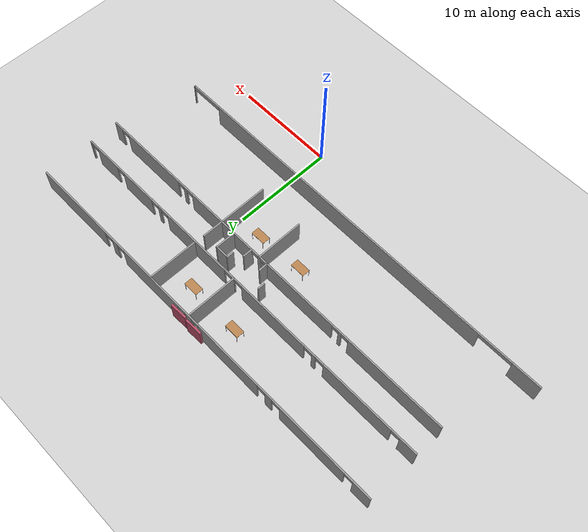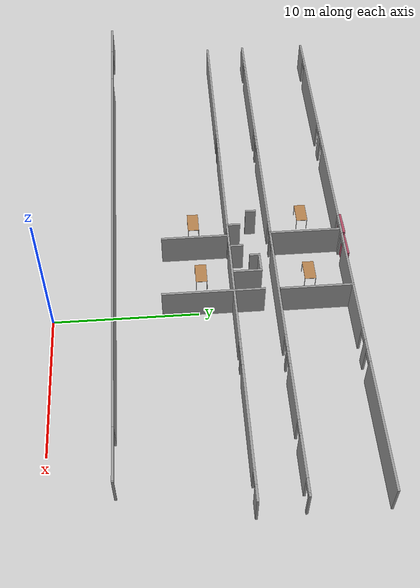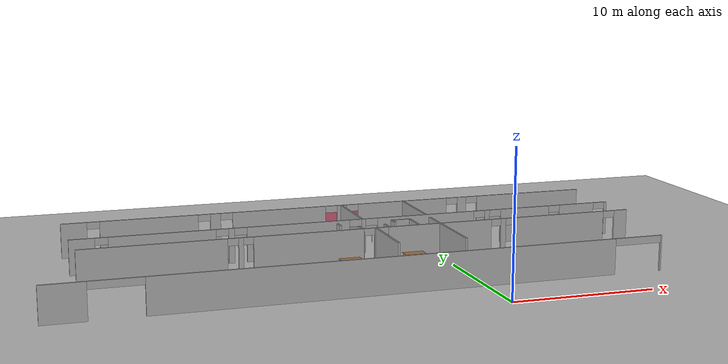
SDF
<sdf version="1.6">
 <world name="default">
  <model name="ground_plane">
   <static>1</static>
   <link name="link">
    <collision name="collision">
     <geometry><plane><normal>0 0 1</normal><size>100 100</size></plane></geometry>
     <surface><friction><ode><mu>100</mu><mu2>50</mu2></ode></friction></surface>
    </collision>
    <visual name="visual">
     <cast_shadows>0</cast_shadows>
     <geometry><plane><normal>0 0 1</normal><size>100 100</size></plane></geometry>
     <material>
      <script><uri>file://media/materials/scripts/gazebo.material</uri><name>Gazebo/Grey</name></script>
     </material>
    </visual>
   </link>
  </model>
  <model name="fin_se1f1.sdf">
   <pose>1.8125 -2.2901 0 0 -0 0</pose>
   <link name="Wall_1">
    <pose>-9.82457 6.52457 0 0 -0 0</pose>
    <visual name="Wall_1_Visual_0">
     <pose>-19.528 0 1.25 0 -0 0</pose>
     <geometry><box><size>2.94395 0.15 2.5</size></box></geometry>
     <material>
      <script><uri>file://media/materials/scripts/gazebo.material</uri><name>Gazebo/Grey</name></script>
      <ambient>1 1 1 1</ambient>
     </material>
     <meta><layer>0</layer></meta>
    </visual>
    <collision name="Wall_1_Collision_0">
     <geometry><box><size>2.94395 0.15 2.5</size></box></geometry>
     <pose>-19.528 0 1.25 0 -0 0</pose>
    </collision>
    <visual name="Wall_1_Visual_1">
     <pose>1.49202 0 1.25 0 -0 0</pose>
     <geometry><box><size>31.9924 0.15 2.5</size></box></geometry>
     <material>
      <script><uri>file://media/materials/scripts/gazebo.material</uri><name>Gazebo/Grey</name></script>
      <ambient>1 1 1 1</ambient>
     </material>
     <meta><layer>0</layer></meta>
    </visual>
    <collision name="Wall_1_Collision_1">
     <geometry><box><size>31.9924 0.15 2.5</size></box></geometry>
     <pose>1.49202 0 1.25 0 -0 0</pose>
    </collision>
    <visual name="Wall_1_Visual_2">
     <pose>20.9503 0 1.25 0 -0 0</pose>
     <geometry><box><size>0.099489 0.15 2.5</size></box></geometry>
     <material>
      <script><uri>file://media/materials/scripts/gazebo.material</uri><name>Gazebo/Grey</name></script>
      <ambient>1 1 1 1</ambient>
     </material>
     <meta><layer>0</layer></meta>
    </visual>
    <collision name="Wall_1_Collision_2">
     <geometry><box><size>0.099489 0.15 2.5</size></box></geometry>
     <pose>20.9503 0 1.25 0 -0 0</pose>
    </collision>
    <visual name="Wall_1_Visual_3">
     <pose>-16.2801 0 2.25 0 -0 0</pose>
     <geometry><box><size>3.55186 0.15 0.5</size></box></geometry>
     <material>
      <script><uri>file://media/materials/scripts/gazebo.material</uri><name>Gazebo/Grey</name></script>
      <ambient>1 1 1 1</ambient>
     </material>
     <meta><layer>0</layer></meta>
    </visual>
    <collision name="Wall_1_Collision_3">
     <geometry><box><size>3.55186 0.15 0.5</size></box></geometry>
     <pose>-16.2801 0 2.25 0 -0 0</pose>
    </collision>
    <visual name="Wall_1_Visual_4">
     <pose>19.1944 0 2.25 0 -0 0</pose>
     <geometry><box><size>3.41229 0.15 0.5</size></box></geometry>
     <material>
      <script><uri>file://media/materials/scripts/gazebo.material</uri><name>Gazebo/Grey</name></script>
      <ambient>1 1 1 1</ambient>
     </material>
     <meta><layer>0</layer></meta>
    </visual>
    <collision name="Wall_1_Collision_4">
     <geometry><box><size>3.41229 0.15 0.5</size></box></geometry>
     <pose>19.1944 0 2.25 0 -0 0</pose>
    </collision>
   </link>
   <link name="Wall_102">
    <collision name="Wall_102_Collision">
     <geometry><box><size>0.75 0.15 2.5</size></box></geometry>
     <pose>0 0 1.25 0 -0 0</pose>
    </collision>
    <visual name="Wall_102_Visual">
     <pose>0 0 1.25 0 -0 0</pose>
     <geometry><box><size>0.75 0.15 2.5</size></box></geometry>
     <material>
      <script><uri>file://media/materials/scripts/gazebo.material</uri><name>Gazebo/Grey</name></script>
      <ambient>1 1 1 1</ambient>
     </material>
     <meta><layer>0</layer></meta>
    </visual>
    <pose>-8.86395 16.4896 0 0 0 -1.5708</pose>
   </link>
   <link name="Wall_108">
    <collision name="Wall_108_Collision">
     <geometry><box><size>7 0.15 2.5</size></box></geometry>
     <pose>0 0 1.25 0 -0 0</pose>
    </collision>
    <visual name="Wall_108_Visual">
     <pose>0 0 1.25 0 -0 0</pose>
     <geometry><box><size>7 0.15 2.5</size></box></geometry>
     <material>
      <script><uri>file://media/materials/scripts/gazebo.material</uri><name>Gazebo/Grey</name></script>
      <ambient>1 1 1 1</ambient>
     </material>
     <meta><layer>0</layer></meta>
    </visual>
    <pose>-1.87432 13.2994 0 0 -0 1.5708</pose>
   </link>
   <link name="Wall_112">
    <collision name="Wall_112_Collision">
     <geometry><box><size>4.75 0.15 2.5</size></box></geometry>
     <pose>0 0 1.25 0 -0 0</pose>
    </collision>
    <visual name="Wall_112_Visual">
     <pose>0 0 1.25 0 -0 0</pose>
     <geometry><box><size>4.75 0.15 2.5</size></box></geometry>
     <material>
      <script><uri>file://media/materials/scripts/gazebo.material</uri><name>Gazebo/Grey</name></script>
      <ambient>1 1 1 1</ambient>
     </material>
     <meta><layer>0</layer></meta>
    </visual>
    <pose>-6.68954 12.3361 0 0 0 -1.5708</pose>
   </link>
   <link name="Wall_132">
    <collision name="Wall_132_Collision">
     <geometry><box><size>0.75 0.15 2.5</size></box></geometry>
     <pose>0 0 1.25 0 -0 0</pose>
    </collision>
    <visual name="Wall_132_Visual">
     <pose>0 0 1.25 0 -0 0</pose>
     <geometry><box><size>0.75 0.15 2.5</size></box></geometry>
     <material>
      <script><uri>file://media/materials/scripts/gazebo.material</uri><name>Gazebo/Grey</name></script>
      <ambient>1 1 1 1</ambient>
     </material>
     <meta><layer>0</layer></meta>
    </visual>
    <pose>-4.81696 16.3807 0 0 -0 1.5708</pose>
   </link>
   <link name="Wall_133">
    <collision name="Wall_133_Collision">
     <geometry><box><size>1.5 0.15 2.5</size></box></geometry>
     <pose>0 0 1.25 0 -0 0</pose>
    </collision>
    <visual name="Wall_133_Visual">
     <pose>0 0 1.25 0 -0 0</pose>
     <geometry><box><size>1.5 0.15 2.5</size></box></geometry>
     <material>
      <script><uri>file://media/materials/scripts/gazebo.material</uri><name>Gazebo/Grey</name></script>
      <ambient>1 1 1 1</ambient>
     </material>
     <meta><layer>0</layer></meta>
    </visual>
    <pose>-4.14196 16.6807 0 0 -0 0</pose>
   </link>
   <link name="Wall_134">
    <collision name="Wall_134_Collision">
     <geometry><box><size>2 0.15 2.5</size></box></geometry>
     <pose>0 0 1.25 0 -0 0</pose>
    </collision>
    <visual name="Wall_134_Visual">
     <pose>0 0 1.25 0 -0 0</pose>
     <geometry><box><size>2 0.15 2.5</size></box></geometry>
     <material>
      <script><uri>file://media/materials/scripts/gazebo.material</uri><name>Gazebo/Grey</name></script>
      <ambient>1 1 1 1</ambient>
     </material>
     <meta><layer>0</layer></meta>
    </visual>
    <pose>-3.46696 15.7557 0 0 0 -1.5708</pose>
   </link>
   <link name="Wall_136">
    <collision name="Wall_136_Collision">
     <geometry><box><size>1 0.15 2.5</size></box></geometry>
     <pose>0 0 1.25 0 -0 0</pose>
    </collision>
    <visual name="Wall_136_Visual">
     <pose>0 0 1.25 0 -0 0</pose>
     <geometry><box><size>1 0.15 2.5</size></box></geometry>
     <material>
      <script><uri>file://media/materials/scripts/gazebo.material</uri><name>Gazebo/Grey</name></script>
      <ambient>1 1 1 1</ambient>
     </material>
     <meta><layer>0</layer></meta>
    </visual>
    <pose>-5.7265 15.1681 0 0 -0 1.5708</pose>
   </link>
   <link name="Wall_138">
    <collision name="Wall_138_Collision">
     <geometry><box><size>1 0.15 2.5</size></box></geometry>
     <pose>0 0 1.25 0 -0 0</pose>
    </collision>
    <visual name="Wall_138_Visual">
     <pose>0 0 1.25 0 -0 0</pose>
     <geometry><box><size>1 0.15 2.5</size></box></geometry>
     <material>
      <script><uri>file://media/materials/scripts/gazebo.material</uri><name>Gazebo/Grey</name></script>
      <ambient>1 1 1 1</ambient>
     </material>
     <meta><layer>0</layer></meta>
    </visual>
    <pose>-7.65259 15.1146 0 0 -0 1.5708</pose>
   </link>
   <link name="Wall_22">
    <pose>-7.37457 22.7246 0 0 -0 3.14159</pose>
    <visual name="Wall_22_Visual_0">
     <pose>-15.9484 0 1.25 0 -0 0</pose>
     <geometry><box><size>8.60329 0.15 2.5</size></box></geometry>
     <material>
      <script><uri>file://media/materials/scripts/gazebo.material</uri><name>Gazebo/Grey</name></script>
      <ambient>1 1 1 1</ambient>
     </material>
     <meta><layer>0</layer></meta>
    </visual>
    <collision name="Wall_22_Collision_0">
     <geometry><box><size>8.60329 0.15 2.5</size></box></geometry>
     <pose>-15.9484 0 1.25 0 -0 0</pose>
    </collision>
    <visual name="Wall_22_Visual_1">
     <pose>-10.3821 0 1.25 0 -0 0</pose>
     <geometry><box><size>0.729199 0.15 2.5</size></box></geometry>
     <material>
      <script><uri>file://media/materials/scripts/gazebo.material</uri><name>Gazebo/Grey</name></script>
      <ambient>1 1 1 1</ambient>
     </material>
     <meta><layer>0</layer></meta>
    </visual>
    <collision name="Wall_22_Collision_1">
     <geometry><box><size>0.729199 0.15 2.5</size></box></geometry>
     <pose>-10.3821 0 1.25 0 -0 0</pose>
    </collision>
    <visual name="Wall_22_Visual_2">
     <pose>-5.52468 0 1.25 0 -0 0</pose>
     <geometry><box><size>7.18566 0.15 2.5</size></box></geometry>
     <material>
      <script><uri>file://media/materials/scripts/gazebo.material</uri><name>Gazebo/Grey</name></script>
      <ambient>1 1 1 1</ambient>
     </material>
     <meta><layer>0</layer></meta>
    </visual>
    <collision name="Wall_22_Collision_2">
     <geometry><box><size>7.18566 0.15 2.5</size></box></geometry>
     <pose>-5.52468 0 1.25 0 -0 0</pose>
    </collision>
    <visual name="Wall_22_Visual_3">
     <pose>-0.657198 0 1.25 0 -0 0</pose>
     <geometry><box><size>0.749313 0.15 2.5</size></box></geometry>
     <material>
      <script><uri>file://media/materials/scripts/gazebo.material</uri><name>Gazebo/Grey</name></script>
      <ambient>1 1 1 1</ambient>
     </material>
     <meta><layer>0</layer></meta>
    </visual>
    <collision name="Wall_22_Collision_3">
     <geometry><box><size>0.749313 0.15 2.5</size></box></geometry>
     <pose>-0.657198 0 1.25 0 -0 0</pose>
    </collision>
    <visual name="Wall_22_Visual_4">
     <pose>4.19017 0 1.25 0 -0 0</pose>
     <geometry><box><size>7.14543 0.15 2.5</size></box></geometry>
     <material>
      <script><uri>file://media/materials/scripts/gazebo.material</uri><name>Gazebo/Grey</name></script>
      <ambient>1 1 1 1</ambient>
     </material>
     <meta><layer>0</layer></meta>
    </visual>
    <collision name="Wall_22_Collision_4">
     <geometry><box><size>7.14543 0.15 2.5</size></box></geometry>
     <pose>4.19017 0 1.25 0 -0 0</pose>
    </collision>
    <visual name="Wall_22_Visual_5">
     <pose>9.0476 0 1.25 0 -0 0</pose>
     <geometry><box><size>0.769426 0.15 2.5</size></box></geometry>
     <material>
      <script><uri>file://media/materials/scripts/gazebo.material</uri><name>Gazebo/Grey</name></script>
      <ambient>1 1 1 1</ambient>
     </material>
     <meta><layer>0</layer></meta>
    </visual>
    <collision name="Wall_22_Collision_5">
     <geometry><box><size>0.769426 0.15 2.5</size></box></geometry>
     <pose>9.0476 0 1.25 0 -0 0</pose>
    </collision>
    <visual name="Wall_22_Visual_6">
     <pose>13.9151 0 1.25 0 -0 0</pose>
     <geometry><box><size>7.16554 0.15 2.5</size></box></geometry>
     <material>
      <script><uri>file://media/materials/scripts/gazebo.material</uri><name>Gazebo/Grey</name></script>
      <ambient>1 1 1 1</ambient>
     </material>
     <meta><layer>0</layer></meta>
    </visual>
    <collision name="Wall_22_Collision_6">
     <geometry><box><size>7.16554 0.15 2.5</size></box></geometry>
     <pose>13.9151 0 1.25 0 -0 0</pose>
    </collision>
    <visual name="Wall_22_Visual_7">
     <pose>19.3239 0 1.25 0 -0 0</pose>
     <geometry><box><size>1.85214 0.15 2.5</size></box></geometry>
     <material>
      <script><uri>file://media/materials/scripts/gazebo.material</uri><name>Gazebo/Grey</name></script>
      <ambient>1 1 1 1</ambient>
     </material>
     <meta><layer>0</layer></meta>
    </visual>
    <collision name="Wall_22_Collision_7">
     <geometry><box><size>1.85214 0.15 2.5</size></box></geometry>
     <pose>19.3239 0 1.25 0 -0 0</pose>
    </collision>
    <visual name="Wall_22_Visual_8">
     <pose>-11.1967 0 2.25 0 -0 0</pose>
     <geometry><box><size>0.9 0.15 0.5</size></box></geometry>
     <material>
      <script><uri>file://media/materials/scripts/gazebo.material</uri><name>Gazebo/Grey</name></script>
      <ambient>1 1 1 1</ambient>
     </material>
     <meta><layer>0</layer></meta>
    </visual>
    <collision name="Wall_22_Collision_8">
     <geometry><box><size>0.9 0.15 0.5</size></box></geometry>
     <pose>-11.1967 0 2.25 0 -0 0</pose>
    </collision>
    <visual name="Wall_22_Visual_9">
     <pose>-9.56751 0 2.25 0 -0 0</pose>
     <geometry><box><size>0.9 0.15 0.5</size></box></geometry>
     <material>
      <script><uri>file://media/materials/scripts/gazebo.material</uri><name>Gazebo/Grey</name></script>
      <ambient>1 1 1 1</ambient>
     </material>
     <meta><layer>0</layer></meta>
    </visual>
    <collision name="Wall_22_Collision_9">
     <geometry><box><size>0.9 0.15 0.5</size></box></geometry>
     <pose>-9.56751 0 2.25 0 -0 0</pose>
    </collision>
    <visual name="Wall_22_Visual_10">
     <pose>-1.48185 0 2.25 0 -0 0</pose>
     <geometry><box><size>0.9 0.15 0.5</size></box></geometry>
     <material>
      <script><uri>file://media/materials/scripts/gazebo.material</uri><name>Gazebo/Grey</name></script>
      <ambient>1 1 1 1</ambient>
     </material>
     <meta><layer>0</layer></meta>
    </visual>
    <collision name="Wall_22_Collision_10">
     <geometry><box><size>0.9 0.15 0.5</size></box></geometry>
     <pose>-1.48185 0 2.25 0 -0 0</pose>
    </collision>
    <visual name="Wall_22_Visual_11">
     <pose>0.167459 0 2.25 0 -0 0</pose>
     <geometry><box><size>0.9 0.15 0.5</size></box></geometry>
     <material>
      <script><uri>file://media/materials/scripts/gazebo.material</uri><name>Gazebo/Grey</name></script>
      <ambient>1 1 1 1</ambient>
     </material>
     <meta><layer>0</layer></meta>
    </visual>
    <collision name="Wall_22_Collision_11">
     <geometry><box><size>0.9 0.15 0.5</size></box></geometry>
     <pose>0.167459 0 2.25 0 -0 0</pose>
    </collision>
    <visual name="Wall_22_Visual_12">
     <pose>8.21289 0 2.25 0 -0 0</pose>
     <geometry><box><size>0.9 0.15 0.5</size></box></geometry>
     <material>
      <script><uri>file://media/materials/scripts/gazebo.material</uri><name>Gazebo/Grey</name></script>
      <ambient>1 1 1 1</ambient>
     </material>
     <meta><layer>0</layer></meta>
    </visual>
    <collision name="Wall_22_Collision_12">
     <geometry><box><size>0.9 0.15 0.5</size></box></geometry>
     <pose>8.21289 0 2.25 0 -0 0</pose>
    </collision>
    <visual name="Wall_22_Visual_13">
     <pose>9.88231 0 2.25 0 -0 0</pose>
     <geometry><box><size>0.9 0.15 0.5</size></box></geometry>
     <material>
      <script><uri>file://media/materials/scripts/gazebo.material</uri><name>Gazebo/Grey</name></script>
      <ambient>1 1 1 1</ambient>
     </material>
     <meta><layer>0</layer></meta>
    </visual>
    <collision name="Wall_22_Collision_13">
     <geometry><box><size>0.9 0.15 0.5</size></box></geometry>
     <pose>9.88231 0 2.25 0 -0 0</pose>
    </collision>
    <visual name="Wall_22_Visual_14">
     <pose>17.9479 0 2.25 0 -0 0</pose>
     <geometry><box><size>0.9 0.15 0.5</size></box></geometry>
     <material>
      <script><uri>file://media/materials/scripts/gazebo.material</uri><name>Gazebo/Grey</name></script>
      <ambient>1 1 1 1</ambient>
     </material>
     <meta><layer>0</layer></meta>
    </visual>
    <collision name="Wall_22_Collision_14">
     <geometry><box><size>0.9 0.15 0.5</size></box></geometry>
     <pose>17.9479 0 2.25 0 -0 0</pose>
    </collision>
   </link>
   <link name="Wall_69">
    <pose>-7.41686 17.6737 0 0 -0 0</pose>
    <visual name="Wall_69_Visual_0">
     <pose>-19.3631 0 1.25 0 -0 0</pose>
     <geometry><box><size>1.77375 0.15 2.5</size></box></geometry>
     <material>
      <script><uri>file://media/materials/scripts/gazebo.material</uri><name>Gazebo/Grey</name></script>
      <ambient>1 1 1 1</ambient>
     </material>
     <meta><layer>0</layer></meta>
    </visual>
    <collision name="Wall_69_Collision_0">
     <geometry><box><size>1.77375 0.15 2.5</size></box></geometry>
     <pose>-19.3631 0 1.25 0 -0 0</pose>
    </collision>
    <visual name="Wall_69_Visual_1">
     <pose>-13.8326 0 1.25 0 -0 0</pose>
     <geometry><box><size>7.48736 0.15 2.5</size></box></geometry>
     <material>
      <script><uri>file://media/materials/scripts/gazebo.material</uri><name>Gazebo/Grey</name></script>
      <ambient>1 1 1 1</ambient>
     </material>
     <meta><layer>0</layer></meta>
    </visual>
    <collision name="Wall_69_Collision_1">
     <geometry><box><size>7.48736 0.15 2.5</size></box></geometry>
     <pose>-13.8326 0 1.25 0 -0 0</pose>
    </collision>
    <visual name="Wall_69_Visual_2">
     <pose>-8.97514 0 1.25 0 -0 0</pose>
     <geometry><box><size>0.427496 0.15 2.5</size></box></geometry>
     <material>
      <script><uri>file://media/materials/scripts/gazebo.material</uri><name>Gazebo/Grey</name></script>
      <ambient>1 1 1 1</ambient>
     </material>
     <meta><layer>0</layer></meta>
    </visual>
    <collision name="Wall_69_Collision_2">
     <geometry><box><size>0.427496 0.15 2.5</size></box></geometry>
     <pose>-8.97514 0 1.25 0 -0 0</pose>
    </collision>
    <visual name="Wall_69_Visual_3">
     <pose>-4.08754 0 1.25 0 -0 0</pose>
     <geometry><box><size>7.5477 0.15 2.5</size></box></geometry>
     <material>
      <script><uri>file://media/materials/scripts/gazebo.material</uri><name>Gazebo/Grey</name></script>
      <ambient>1 1 1 1</ambient>
     </material>
     <meta><layer>0</layer></meta>
    </visual>
    <collision name="Wall_69_Collision_3">
     <geometry><box><size>7.5477 0.15 2.5</size></box></geometry>
     <pose>-4.08754 0 1.25 0 -0 0</pose>
    </collision>
    <visual name="Wall_69_Visual_4">
     <pose>0.749771 0 1.25 0 -0 0</pose>
     <geometry><box><size>0.326928 0.15 2.5</size></box></geometry>
     <material>
      <script><uri>file://media/materials/scripts/gazebo.material</uri><name>Gazebo/Grey</name></script>
      <ambient>1 1 1 1</ambient>
     </material>
     <meta><layer>0</layer></meta>
    </visual>
    <collision name="Wall_69_Collision_4">
     <geometry><box><size>0.326928 0.15 2.5</size></box></geometry>
     <pose>0.749771 0 1.25 0 -0 0</pose>
    </collision>
    <visual name="Wall_69_Visual_5">
     <pose>5.56697 0 1.25 0 -0 0</pose>
     <geometry><box><size>7.50747 0.15 2.5</size></box></geometry>
     <material>
      <script><uri>file://media/materials/scripts/gazebo.material</uri><name>Gazebo/Grey</name></script>
      <ambient>1 1 1 1</ambient>
     </material>
     <meta><layer>0</layer></meta>
    </visual>
    <collision name="Wall_69_Collision_5">
     <geometry><box><size>7.50747 0.15 2.5</size></box></geometry>
     <pose>5.56697 0 1.25 0 -0 0</pose>
    </collision>
    <visual name="Wall_69_Visual_6">
     <pose>10.4043 0 1.25 0 -0 0</pose>
     <geometry><box><size>0.367155 0.15 2.5</size></box></geometry>
     <material>
      <script><uri>file://media/materials/scripts/gazebo.material</uri><name>Gazebo/Grey</name></script>
      <ambient>1 1 1 1</ambient>
     </material>
     <meta><layer>0</layer></meta>
    </visual>
    <collision name="Wall_69_Collision_6">
     <geometry><box><size>0.367155 0.15 2.5</size></box></geometry>
     <pose>10.4043 0 1.25 0 -0 0</pose>
    </collision>
    <visual name="Wall_69_Visual_7">
     <pose>13.4515 0 1.25 0 -0 0</pose>
     <geometry><box><size>3.92726 0.15 2.5</size></box></geometry>
     <material>
      <script><uri>file://media/materials/scripts/gazebo.material</uri><name>Gazebo/Grey</name></script>
      <ambient>1 1 1 1</ambient>
     </material>
     <meta><layer>0</layer></meta>
    </visual>
    <collision name="Wall_69_Collision_7">
     <geometry><box><size>3.92726 0.15 2.5</size></box></geometry>
     <pose>13.4515 0 1.25 0 -0 0</pose>
    </collision>
    <visual name="Wall_69_Visual_8">
     <pose>17.7256 0 1.25 0 -0 0</pose>
     <geometry><box><size>2.82101 0.15 2.5</size></box></geometry>
     <material>
      <script><uri>file://media/materials/scripts/gazebo.material</uri><name>Gazebo/Grey</name></script>
      <ambient>1 1 1 1</ambient>
     </material>
     <meta><layer>0</layer></meta>
    </visual>
    <collision name="Wall_69_Collision_8">
     <geometry><box><size>2.82101 0.15 2.5</size></box></geometry>
     <pose>17.7256 0 1.25 0 -0 0</pose>
    </collision>
    <visual name="Wall_69_Visual_9">
     <pose>20.1431 0 1.25 0 -0 0</pose>
     <geometry><box><size>0.21387 0.15 2.5</size></box></geometry>
     <material>
      <script><uri>file://media/materials/scripts/gazebo.material</uri><name>Gazebo/Grey</name></script>
      <ambient>1 1 1 1</ambient>
     </material>
     <meta><layer>0</layer></meta>
    </visual>
    <collision name="Wall_69_Collision_9">
     <geometry><box><size>0.21387 0.15 2.5</size></box></geometry>
     <pose>20.1431 0 1.25 0 -0 0</pose>
    </collision>
    <visual name="Wall_69_Visual_10">
     <pose>-18.0262 0 2.25 0 -0 0</pose>
     <geometry><box><size>0.9 0.15 0.5</size></box></geometry>
     <material>
      <script><uri>file://media/materials/scripts/gazebo.material</uri><name>Gazebo/Grey</name></script>
      <ambient>1 1 1 1</ambient>
     </material>
     <meta><layer>0</layer></meta>
    </visual>
    <collision name="Wall_69_Collision_10">
     <geometry><box><size>0.9 0.15 0.5</size></box></geometry>
     <pose>-18.0262 0 2.25 0 -0 0</pose>
    </collision>
    <visual name="Wall_69_Visual_11">
     <pose>-9.63889 0 2.25 0 -0 0</pose>
     <geometry><box><size>0.9 0.15 0.5</size></box></geometry>
     <material>
      <script><uri>file://media/materials/scripts/gazebo.material</uri><name>Gazebo/Grey</name></script>
      <ambient>1 1 1 1</ambient>
     </material>
     <meta><layer>0</layer></meta>
    </visual>
    <collision name="Wall_69_Collision_11">
     <geometry><box><size>0.9 0.15 0.5</size></box></geometry>
     <pose>-9.63889 0 2.25 0 -0 0</pose>
    </collision>
    <visual name="Wall_69_Visual_12">
     <pose>-8.31139 0 2.25 0 -0 0</pose>
     <geometry><box><size>0.9 0.15 0.5</size></box></geometry>
     <material>
      <script><uri>file://media/materials/scripts/gazebo.material</uri><name>Gazebo/Grey</name></script>
      <ambient>1 1 1 1</ambient>
     </material>
     <meta><layer>0</layer></meta>
    </visual>
    <collision name="Wall_69_Collision_12">
     <geometry><box><size>0.9 0.15 0.5</size></box></geometry>
     <pose>-8.31139 0 2.25 0 -0 0</pose>
    </collision>
    <visual name="Wall_69_Visual_13">
     <pose>0.136307 0 2.25 0 -0 0</pose>
     <geometry><box><size>0.9 0.15 0.5</size></box></geometry>
     <material>
      <script><uri>file://media/materials/scripts/gazebo.material</uri><name>Gazebo/Grey</name></script>
      <ambient>1 1 1 1</ambient>
     </material>
     <meta><layer>0</layer></meta>
    </visual>
    <collision name="Wall_69_Collision_13">
     <geometry><box><size>0.9 0.15 0.5</size></box></geometry>
     <pose>0.136307 0 2.25 0 -0 0</pose>
    </collision>
    <visual name="Wall_69_Visual_14">
     <pose>1.36323 0 2.25 0 -0 0</pose>
     <geometry><box><size>0.9 0.15 0.5</size></box></geometry>
     <material>
      <script><uri>file://media/materials/scripts/gazebo.material</uri><name>Gazebo/Grey</name></script>
      <ambient>1 1 1 1</ambient>
     </material>
     <meta><layer>0</layer></meta>
    </visual>
    <collision name="Wall_69_Collision_14">
     <geometry><box><size>0.9 0.15 0.5</size></box></geometry>
     <pose>1.36323 0 2.25 0 -0 0</pose>
    </collision>
    <visual name="Wall_69_Visual_15">
     <pose>9.77071 0 2.25 0 -0 0</pose>
     <geometry><box><size>0.9 0.15 0.5</size></box></geometry>
     <material>
      <script><uri>file://media/materials/scripts/gazebo.material</uri><name>Gazebo/Grey</name></script>
      <ambient>1 1 1 1</ambient>
     </material>
     <meta><layer>0</layer></meta>
    </visual>
    <collision name="Wall_69_Collision_15">
     <geometry><box><size>0.9 0.15 0.5</size></box></geometry>
     <pose>9.77071 0 2.25 0 -0 0</pose>
    </collision>
    <visual name="Wall_69_Visual_16">
     <pose>11.0379 0 2.25 0 -0 0</pose>
     <geometry><box><size>0.9 0.15 0.5</size></box></geometry>
     <material>
      <script><uri>file://media/materials/scripts/gazebo.material</uri><name>Gazebo/Grey</name></script>
      <ambient>1 1 1 1</ambient>
     </material>
     <meta><layer>0</layer></meta>
    </visual>
    <collision name="Wall_69_Collision_16">
     <geometry><box><size>0.9 0.15 0.5</size></box></geometry>
     <pose>11.0379 0 2.25 0 -0 0</pose>
    </collision>
    <visual name="Wall_69_Visual_17">
     <pose>15.8651 0 2.25 0 -0 0</pose>
     <geometry><box><size>0.9 0.15 0.5</size></box></geometry>
     <material>
      <script><uri>file://media/materials/scripts/gazebo.material</uri><name>Gazebo/Grey</name></script>
      <ambient>1 1 1 1</ambient>
     </material>
     <meta><layer>0</layer></meta>
    </visual>
    <collision name="Wall_69_Collision_17">
     <geometry><box><size>0.9 0.15 0.5</size></box></geometry>
     <pose>15.8651 0 2.25 0 -0 0</pose>
    </collision>
    <visual name="Wall_69_Visual_18">
     <pose>19.5861 0 2.25 0 -0 0</pose>
     <geometry><box><size>0.9 0.15 0.5</size></box></geometry>
     <material>
      <script><uri>file://media/materials/scripts/gazebo.material</uri><name>Gazebo/Grey</name></script>
      <ambient>1 1 1 1</ambient>
     </material>
     <meta><layer>0</layer></meta>
    </visual>
    <collision name="Wall_69_Collision_18">
     <geometry><box><size>0.9 0.15 0.5</size></box></geometry>
     <pose>19.5861 0 2.25 0 -0 0</pose>
    </collision>
   </link>
   <link name="Wall_78">
    <collision name="Wall_78_Collision">
     <geometry><box><size>5 0.15 2.5</size></box></geometry>
     <pose>0 0 1.25 0 -0 0</pose>
    </collision>
    <visual name="Wall_78_Visual">
     <pose>0 0 1.25 0 -0 0</pose>
     <geometry><box><size>5 0.15 2.5</size></box></geometry>
     <material>
      <script><uri>file://media/materials/scripts/gazebo.material</uri><name>Gazebo/Grey</name></script>
      <ambient>1 1 1 1</ambient>
     </material>
     <meta><layer>0</layer></meta>
    </visual>
    <pose>-1.81168 20.294 0 0 0 -1.5708</pose>
   </link>
   <link name="Wall_80">
    <collision name="Wall_80_Collision">
     <geometry><box><size>5 0.15 2.5</size></box></geometry>
     <pose>0 0 1.25 0 -0 0</pose>
    </collision>
    <visual name="Wall_80_Visual">
     <pose>0 0 1.25 0 -0 0</pose>
     <geometry><box><size>5 0.15 2.5</size></box></geometry>
     <material>
      <script><uri>file://media/materials/scripts/gazebo.material</uri><name>Gazebo/Grey</name></script>
      <ambient>1 1 1 1</ambient>
     </material>
     <meta><layer>0</layer></meta>
    </visual>
    <pose>-6.73391 20.1709 0 0 0 -1.5708</pose>
   </link>
   <link name="Wall_88">
    <pose>-7.32702 14.6896 0 0 -0 0</pose>
    <visual name="Wall_88_Visual_0">
     <pose>-15.144 0 1.25 0 -0 0</pose>
     <geometry><box><size>10.2121 0.15 2.5</size></box></geometry>
     <material>
      <script><uri>file://media/materials/scripts/gazebo.material</uri><name>Gazebo/Grey</name></script>
      <ambient>1 1 1 1</ambient>
     </material>
     <meta><layer>0</layer></meta>
    </visual>
    <collision name="Wall_88_Collision_0">
     <geometry><box><size>10.2121 0.15 2.5</size></box></geometry>
     <pose>-15.144 0 1.25 0 -0 0</pose>
    </collision>
    <visual name="Wall_88_Visual_1">
     <pose>-9.0851 0 1.25 0 -0 0</pose>
     <geometry><box><size>0.347043 0.15 2.5</size></box></geometry>
     <material>
      <script><uri>file://media/materials/scripts/gazebo.material</uri><name>Gazebo/Grey</name></script>
      <ambient>1 1 1 1</ambient>
     </material>
     <meta><layer>0</layer></meta>
    </visual>
    <collision name="Wall_88_Collision_1">
     <geometry><box><size>0.347043 0.15 2.5</size></box></geometry>
     <pose>-9.0851 0 1.25 0 -0 0</pose>
    </collision>
    <visual name="Wall_88_Visual_2">
     <pose>-4.24778 0 1.25 0 -0 0</pose>
     <geometry><box><size>7.92986 0.15 2.5</size></box></geometry>
     <material>
      <script><uri>file://media/materials/scripts/gazebo.material</uri><name>Gazebo/Grey</name></script>
      <ambient>1 1 1 1</ambient>
     </material>
     <meta><layer>0</layer></meta>
    </visual>
    <collision name="Wall_88_Collision_2">
     <geometry><box><size>7.92986 0.15 2.5</size></box></geometry>
     <pose>-4.24778 0 1.25 0 -0 0</pose>
    </collision>
    <visual name="Wall_88_Visual_3">
     <pose>0.644846 0 1.25 0 -0 0</pose>
     <geometry><box><size>0.296758 0.15 2.5</size></box></geometry>
     <material>
      <script><uri>file://media/materials/scripts/gazebo.material</uri><name>Gazebo/Grey</name></script>
      <ambient>1 1 1 1</ambient>
     </material>
     <meta><layer>0</layer></meta>
    </visual>
    <collision name="Wall_88_Collision_3">
     <geometry><box><size>0.296758 0.15 2.5</size></box></geometry>
     <pose>0.644846 0 1.25 0 -0 0</pose>
    </collision>
    <visual name="Wall_88_Visual_4">
     <pose>5.45199 0 1.25 0 -0 0</pose>
     <geometry><box><size>7.83935 0.15 2.5</size></box></geometry>
     <material>
      <script><uri>file://media/materials/scripts/gazebo.material</uri><name>Gazebo/Grey</name></script>
      <ambient>1 1 1 1</ambient>
     </material>
     <meta><layer>0</layer></meta>
    </visual>
    <collision name="Wall_88_Collision_4">
     <geometry><box><size>7.83935 0.15 2.5</size></box></geometry>
     <pose>5.45199 0 1.25 0 -0 0</pose>
    </collision>
    <visual name="Wall_88_Visual_5">
     <pose>10.3044 0 1.25 0 -0 0</pose>
     <geometry><box><size>0.387269 0.15 2.5</size></box></geometry>
     <material>
      <script><uri>file://media/materials/scripts/gazebo.material</uri><name>Gazebo/Grey</name></script>
      <ambient>1 1 1 1</ambient>
     </material>
     <meta><layer>0</layer></meta>
    </visual>
    <collision name="Wall_88_Collision_5">
     <geometry><box><size>0.387269 0.15 2.5</size></box></geometry>
     <pose>10.3044 0 1.25 0 -0 0</pose>
    </collision>
    <visual name="Wall_88_Visual_6">
     <pose>14.7797 0 1.25 0 -0 0</pose>
     <geometry><box><size>7.08509 0.15 2.5</size></box></geometry>
     <material>
      <script><uri>file://media/materials/scripts/gazebo.material</uri><name>Gazebo/Grey</name></script>
      <ambient>1 1 1 1</ambient>
     </material>
     <meta><layer>0</layer></meta>
    </visual>
    <collision name="Wall_88_Collision_6">
     <geometry><box><size>7.08509 0.15 2.5</size></box></geometry>
     <pose>14.7797 0 1.25 0 -0 0</pose>
    </collision>
    <visual name="Wall_88_Visual_7">
     <pose>19.7361 0 1.25 0 -0 0</pose>
     <geometry><box><size>1.0278 0.15 2.5</size></box></geometry>
     <material>
      <script><uri>file://media/materials/scripts/gazebo.material</uri><name>Gazebo/Grey</name></script>
      <ambient>1 1 1 1</ambient>
     </material>
     <meta><layer>0</layer></meta>
    </visual>
    <collision name="Wall_88_Collision_7">
     <geometry><box><size>1.0278 0.15 2.5</size></box></geometry>
     <pose>19.7361 0 1.25 0 -0 0</pose>
    </collision>
    <visual name="Wall_88_Visual_8">
     <pose>-9.64827 0 2.25 0 -0 0</pose>
     <geometry><box><size>0.779319 0.15 0.5</size></box></geometry>
     <material>
      <script><uri>file://media/materials/scripts/gazebo.material</uri><name>Gazebo/Grey</name></script>
      <ambient>1 1 1 1</ambient>
     </material>
     <meta><layer>0</layer></meta>
    </visual>
    <collision name="Wall_88_Collision_8">
     <geometry><box><size>0.779319 0.15 0.5</size></box></geometry>
     <pose>-9.64827 0 2.25 0 -0 0</pose>
    </collision>
    <visual name="Wall_88_Visual_9">
     <pose>-8.56214 0 2.25 0 -0 0</pose>
     <geometry><box><size>0.698864 0.15 0.5</size></box></geometry>
     <material>
      <script><uri>file://media/materials/scripts/gazebo.material</uri><name>Gazebo/Grey</name></script>
      <ambient>1 1 1 1</ambient>
     </material>
     <meta><layer>0</layer></meta>
    </visual>
    <collision name="Wall_88_Collision_9">
     <geometry><box><size>0.698864 0.15 0.5</size></box></geometry>
     <pose>-8.56214 0 2.25 0 -0 0</pose>
    </collision>
    <visual name="Wall_88_Visual_10">
     <pose>0.106808 0 2.25 0 -0 0</pose>
     <geometry><box><size>0.779319 0.15 0.5</size></box></geometry>
     <material>
      <script><uri>file://media/materials/scripts/gazebo.material</uri><name>Gazebo/Grey</name></script>
      <ambient>1 1 1 1</ambient>
     </material>
     <meta><layer>0</layer></meta>
    </visual>
    <collision name="Wall_88_Collision_10">
     <geometry><box><size>0.779319 0.15 0.5</size></box></geometry>
     <pose>0.106808 0 2.25 0 -0 0</pose>
    </collision>
    <visual name="Wall_88_Visual_11">
     <pose>1.16277 0 2.25 0 -0 0</pose>
     <geometry><box><size>0.739091 0.15 0.5</size></box></geometry>
     <material>
      <script><uri>file://media/materials/scripts/gazebo.material</uri><name>Gazebo/Grey</name></script>
      <ambient>1 1 1 1</ambient>
     </material>
     <meta><layer>0</layer></meta>
    </visual>
    <collision name="Wall_88_Collision_11">
     <geometry><box><size>0.739091 0.15 0.5</size></box></geometry>
     <pose>1.16277 0 2.25 0 -0 0</pose>
    </collision>
    <visual name="Wall_88_Visual_12">
     <pose>9.74121 0 2.25 0 -0 0</pose>
     <geometry><box><size>0.739091 0.15 0.5</size></box></geometry>
     <material>
      <script><uri>file://media/materials/scripts/gazebo.material</uri><name>Gazebo/Grey</name></script>
      <ambient>1 1 1 1</ambient>
     </material>
     <meta><layer>0</layer></meta>
    </visual>
    <collision name="Wall_88_Collision_12">
     <geometry><box><size>0.739091 0.15 0.5</size></box></geometry>
     <pose>9.74121 0 2.25 0 -0 0</pose>
    </collision>
    <visual name="Wall_88_Visual_13">
     <pose>10.8676 0 2.25 0 -0 0</pose>
     <geometry><box><size>0.739091 0.15 0.5</size></box></geometry>
     <material>
      <script><uri>file://media/materials/scripts/gazebo.material</uri><name>Gazebo/Grey</name></script>
      <ambient>1 1 1 1</ambient>
     </material>
     <meta><layer>0</layer></meta>
    </visual>
    <collision name="Wall_88_Collision_13">
     <geometry><box><size>0.739091 0.15 0.5</size></box></geometry>
     <pose>10.8676 0 2.25 0 -0 0</pose>
    </collision>
    <visual name="Wall_88_Visual_14">
     <pose>18.7722 0 2.25 0 -0 0</pose>
     <geometry><box><size>0.9 0.15 0.5</size></box></geometry>
     <material>
      <script><uri>file://media/materials/scripts/gazebo.material</uri><name>Gazebo/Grey</name></script>
      <ambient>1 1 1 1</ambient>
     </material>
     <meta><layer>0</layer></meta>
    </visual>
    <collision name="Wall_88_Collision_14">
     <geometry><box><size>0.9 0.15 0.5</size></box></geometry>
     <pose>18.7722 0 2.25 0 -0 0</pose>
    </collision>
   </link>
   <static>1</static>
  </model>
  <model name="table_4">
   <static>1</static>
   <link name="link">
    <collision name="surface">
     <pose>0 0 1 0 -0 0</pose>
     <geometry><box><size>1.5 0.8 0.03</size></box></geometry>
     <surface><friction><ode><mu>0.6</mu><mu2>0.6</mu2></ode></friction></surface>
    </collision>
    <visual name="visual1">
     <pose>0 0 1 0 -0 0</pose>
     <geometry><box><size>1.5 0.8 0.03</size></box></geometry>
     <material>
      <script><uri>file://media/materials/scripts/gazebo.material</uri><name>Gazebo/Wood</name></script>
     </material>
    </visual>
    <collision name="front_left_leg">
     <pose>0.68 0.38 0.5 0 -0 0</pose>
     <geometry><cylinder><radius>0.02</radius><length>1</length></cylinder></geometry>
    </collision>
    <visual name="front_left_leg">
     <pose>0.68 0.38 0.5 0 -0 0</pose>
     <geometry><cylinder><radius>0.02</radius><length>1</length></cylinder></geometry>
     <material>
      <script><uri>file://media/materials/scripts/gazebo.material</uri><name>Gazebo/Grey</name></script>
     </material>
    </visual>
    <collision name="front_right_leg">
     <pose>0.68 -0.38 0.5 0 -0 0</pose>
     <geometry><cylinder><radius>0.02</radius><length>1</length></cylinder></geometry>
    </collision>
    <visual name="front_right_leg">
     <pose>0.68 -0.38 0.5 0 -0 0</pose>
     <geometry><cylinder><radius>0.02</radius><length>1</length></cylinder></geometry>
     <material>
      <script><uri>file://media/materials/scripts/gazebo.material</uri><name>Gazebo/Grey</name></script>
     </material>
    </visual>
    <collision name="back_right_leg">
     <pose>-0.68 -0.38 0.5 0 -0 0</pose>
     <geometry><cylinder><radius>0.02</radius><length>1</length></cylinder></geometry>
    </collision>
    <visual name="back_right_leg">
     <pose>-0.68 -0.38 0.5 0 -0 0</pose>
     <geometry><cylinder><radius>0.02</radius><length>1</length></cylinder></geometry>
     <material>
      <script><uri>file://media/materials/scripts/gazebo.material</uri><name>Gazebo/Grey</name></script>
     </material>
    </visual>
    <collision name="back_left_leg">
     <pose>-0.68 0.38 0.5 0 -0 0</pose>
     <geometry><cylinder><radius>0.02</radius><length>1</length></cylinder></geometry>
    </collision>
    <visual name="back_left_leg">
     <pose>-0.68 0.38 0.5 0 -0 0</pose>
     <geometry><cylinder><radius>0.02</radius><length>1</length></cylinder></geometry>
     <material>
      <script><uri>file://media/materials/scripts/gazebo.material</uri><name>Gazebo/Grey</name></script>
     </material>
    </visual>
   </link>
   <pose>-7.5086 10.0383 0 0 -0 0</pose>
  </model>
  <model name="table_5">
   <static>1</static>
   <link name="link">
    <collision name="surface">
     <pose>0 0 1 0 -0 0</pose>
     <geometry><box><size>1.5 0.8 0.03</size></box></geometry>
     <surface><friction><ode><mu>0.6</mu><mu2>0.6</mu2></ode></friction></surface>
    </collision>
    <visual name="visual1">
     <pose>0 0 1 0 -0 0</pose>
     <geometry><box><size>1.5 0.8 0.03</size></box></geometry>
     <material>
      <script><uri>file://media/materials/scripts/gazebo.material</uri><name>Gazebo/Wood</name></script>
     </material>
    </visual>
    <collision name="front_left_leg">
     <pose>0.68 0.38 0.5 0 -0 0</pose>
     <geometry><cylinder><radius>0.02</radius><length>1</length></cylinder></geometry>
    </collision>
    <visual name="front_left_leg">
     <pose>0.68 0.38 0.5 0 -0 0</pose>
     <geometry><cylinder><radius>0.02</radius><length>1</length></cylinder></geometry>
     <material>
      <script><uri>file://media/materials/scripts/gazebo.material</uri><name>Gazebo/Grey</name></script>
     </material>
    </visual>
    <collision name="front_right_leg">
     <pose>0.68 -0.38 0.5 0 -0 0</pose>
     <geometry><cylinder><radius>0.02</radius><length>1</length></cylinder></geometry>
    </collision>
    <visual name="front_right_leg">
     <pose>0.68 -0.38 0.5 0 -0 0</pose>
     <geometry><cylinder><radius>0.02</radius><length>1</length></cylinder></geometry>
     <material>
      <script><uri>file://media/materials/scripts/gazebo.material</uri><name>Gazebo/Grey</name></script>
     </material>
    </visual>
    <collision name="back_right_leg">
     <pose>-0.68 -0.38 0.5 0 -0 0</pose>
     <geometry><cylinder><radius>0.02</radius><length>1</length></cylinder></geometry>
    </collision>
    <visual name="back_right_leg">
     <pose>-0.68 -0.38 0.5 0 -0 0</pose>
     <geometry><cylinder><radius>0.02</radius><length>1</length></cylinder></geometry>
     <material>
      <script><uri>file://media/materials/scripts/gazebo.material</uri><name>Gazebo/Grey</name></script>
     </material>
    </visual>
    <collision name="back_left_leg">
     <pose>-0.68 0.38 0.5 0 -0 0</pose>
     <geometry><cylinder><radius>0.02</radius><length>1</length></cylinder></geometry>
    </collision>
    <visual name="back_left_leg">
     <pose>-0.68 0.38 0.5 0 -0 0</pose>
     <geometry><cylinder><radius>0.02</radius><length>1</length></cylinder></geometry>
     <material>
      <script><uri>file://media/materials/scripts/gazebo.material</uri><name>Gazebo/Grey</name></script>
     </material>
    </visual>
   </link>
   <pose>-7.90698 18.0796 0 0 -0 0</pose>
  </model>
  <model name="table_6">
   <static>1</static>
   <link name="link">
    <collision name="surface">
     <pose>0 0 1 0 -0 0</pose>
     <geometry><box><size>1.5 0.8 0.03</size></box></geometry>
     <surface><friction><ode><mu>0.6</mu><mu2>0.6</mu2></ode></friction></surface>
    </collision>
    <visual name="visual1">
     <pose>0 0 1 0 -0 0</pose>
     <geometry><box><size>1.5 0.8 0.03</size></box></geometry>
     <material>
      <script><uri>file://media/materials/scripts/gazebo.material</uri><name>Gazebo/Wood</name></script>
     </material>
    </visual>
    <collision name="front_left_leg">
     <pose>0.68 0.38 0.5 0 -0 0</pose>
     <geometry><cylinder><radius>0.02</radius><length>1</length></cylinder></geometry>
    </collision>
    <visual name="front_left_leg">
     <pose>0.68 0.38 0.5 0 -0 0</pose>
     <geometry><cylinder><radius>0.02</radius><length>1</length></cylinder></geometry>
     <material>
      <script><uri>file://media/materials/scripts/gazebo.material</uri><name>Gazebo/Grey</name></script>
     </material>
    </visual>
    <collision name="front_right_leg">
     <pose>0.68 -0.38 0.5 0 -0 0</pose>
     <geometry><cylinder><radius>0.02</radius><length>1</length></cylinder></geometry>
    </collision>
    <visual name="front_right_leg">
     <pose>0.68 -0.38 0.5 0 -0 0</pose>
     <geometry><cylinder><radius>0.02</radius><length>1</length></cylinder></geometry>
     <material>
      <script><uri>file://media/materials/scripts/gazebo.material</uri><name>Gazebo/Grey</name></script>
     </material>
    </visual>
    <collision name="back_right_leg">
     <pose>-0.68 -0.38 0.5 0 -0 0</pose>
     <geometry><cylinder><radius>0.02</radius><length>1</length></cylinder></geometry>
    </collision>
    <visual name="back_right_leg">
     <pose>-0.68 -0.38 0.5 0 -0 0</pose>
     <geometry><cylinder><radius>0.02</radius><length>1</length></cylinder></geometry>
     <material>
      <script><uri>file://media/materials/scripts/gazebo.material</uri><name>Gazebo/Grey</name></script>
     </material>
    </visual>
    <collision name="back_left_leg">
     <pose>-0.68 0.38 0.5 0 -0 0</pose>
     <geometry><cylinder><radius>0.02</radius><length>1</length></cylinder></geometry>
    </collision>
    <visual name="back_left_leg">
     <pose>-0.68 0.38 0.5 0 -0 0</pose>
     <geometry><cylinder><radius>0.02</radius><length>1</length></cylinder></geometry>
     <material>
      <script><uri>file://media/materials/scripts/gazebo.material</uri><name>Gazebo/Grey</name></script>
     </material>
    </visual>
   </link>
   <pose>-2.52875 17.9414 0 0 -0 0</pose>
  </model>
  <model name="table_7">
   <static>1</static>
   <link name="link">
    <collision name="surface">
     <pose>0 0 1 0 -0 0</pose>
     <geometry><box><size>1.5 0.8 0.03</size></box></geometry>
     <surface><friction><ode><mu>0.6</mu><mu2>0.6</mu2></ode></friction></surface>
    </collision>
    <visual name="visual1">
     <pose>0 0 1 0 -0 0</pose>
     <geometry><box><size>1.5 0.8 0.03</size></box></geometry>
     <material>
      <script><uri>file://media/materials/scripts/gazebo.material</uri><name>Gazebo/Wood</name></script>
     </material>
    </visual>
    <collision name="front_left_leg">
     <pose>0.68 0.38 0.5 0 -0 0</pose>
     <geometry><cylinder><radius>0.02</radius><length>1</length></cylinder></geometry>
    </collision>
    <visual name="front_left_leg">
     <pose>0.68 0.38 0.5 0 -0 0</pose>
     <geometry><cylinder><radius>0.02</radius><length>1</length></cylinder></geometry>
     <material>
      <script><uri>file://media/materials/scripts/gazebo.material</uri><name>Gazebo/Grey</name></script>
     </material>
    </visual>
    <collision name="front_right_leg">
     <pose>0.68 -0.38 0.5 0 -0 0</pose>
     <geometry><cylinder><radius>0.02</radius><length>1</length></cylinder></geometry>
    </collision>
    <visual name="front_right_leg">
     <pose>0.68 -0.38 0.5 0 -0 0</pose>
     <geometry><cylinder><radius>0.02</radius><length>1</length></cylinder></geometry>
     <material>
      <script><uri>file://media/materials/scripts/gazebo.material</uri><name>Gazebo/Grey</name></script>
     </material>
    </visual>
    <collision name="back_right_leg">
     <pose>-0.68 -0.38 0.5 0 -0 0</pose>
     <geometry><cylinder><radius>0.02</radius><length>1</length></cylinder></geometry>
    </collision>
    <visual name="back_right_leg">
     <pose>-0.68 -0.38 0.5 0 -0 0</pose>
     <geometry><cylinder><radius>0.02</radius><length>1</length></cylinder></geometry>
     <material>
      <script><uri>file://media/materials/scripts/gazebo.material</uri><name>Gazebo/Grey</name></script>
     </material>
    </visual>
    <collision name="back_left_leg">
     <pose>-0.68 0.38 0.5 0 -0 0</pose>
     <geometry><cylinder><radius>0.02</radius><length>1</length></cylinder></geometry>
    </collision>
    <visual name="back_left_leg">
     <pose>-0.68 0.38 0.5 0 -0 0</pose>
     <geometry><cylinder><radius>0.02</radius><length>1</length></cylinder></geometry>
     <material>
      <script><uri>file://media/materials/scripts/gazebo.material</uri><name>Gazebo/Grey</name></script>
     </material>
    </visual>
   </link>
   <pose>-2.78705 10.3298 0 0 -0 0</pose>
  </model>
  <model name="doorOutside_clone_2">
   <link name="link">
    <pose>0.155539 -0.366282 0.216958 0 -0 0</pose>
    <inertial>
     <mass>2.13199</mass>
     <inertia>
      <ixx>0.452656</ixx>
      <ixy>0</ixy>
      <ixz>0</ixz>
      <iyy>0.796738</iyy>
      <iyz>0</iyz>
      <izz>0.699414</izz>
     </inertia>
    </inertial>
    <visual name="visual">
     <geometry><box><size>1.71368 0.198843 2.05986</size></box></geometry>
     <material>
      <script><name>Gazebo/Grey</name><uri>file://media/materials/scripts/gazebo.material</uri></script>
      <ambient>0.7 0.3 0.4 1</ambient>
      <diffuse>0.7 0.7 0.7 1</diffuse>
      <specular>0.01 0.01 0.01 1</specular>
      <emissive>0 0 0 1</emissive>
      <shader type="vertex"><normal_map>__default__</normal_map></shader>
      <lighting>0</lighting>
     </material>
    </visual>
    <collision name="collision">
     <geometry><box><size>1.71368 0.198843 2.05986</size></box></geometry>
     <surface>
      <friction>
       <ode><mu>1</mu><mu2>1</mu2><fdir1>0 0 0</fdir1><slip1>0</slip1><slip2>0</slip2></ode>
       <torsional>
        <coefficient>1</coefficient>
        <patch_radius>0</patch_radius>
        <surface_radius>0</surface_radius>
        <use_patch_radius>1</use_patch_radius>
        <ode><slip>0</slip></ode>
       </torsional>
      </friction>
      <bounce><restitution_coefficient>0</restitution_coefficient><threshold>1e+06</threshold></bounce>
      <contact>
       <collide_without_contact>0</collide_without_contact>
       <collide_without_contact_bitmask>1</collide_without_contact_bitmask>
       <collide_bitmask>1</collide_bitmask>
       <ode>
        <soft_cfm>0</soft_cfm>
        <soft_erp>0.2</soft_erp>
        <kp>1e+13</kp>
        <kd>1</kd>
        <max_vel>0.01</max_vel>
        <min_depth>0</min_depth>
       </ode>
       <bullet>
        <split_impulse>1</split_impulse>
        <split_impulse_penetration_threshold>-0.01</split_impulse_penetration_threshold>
        <soft_cfm>0</soft_cfm>
        <soft_erp>0.2</soft_erp>
        <kp>1e+13</kp>
        <kd>1</kd>
       </bullet>
      </contact>
     </surface>
    </collision>
   </link>
   <static>1</static>
   <pose>-5.9657 21.0537 0.812972 -0 3e-06 0.023078</pose>
  </model>
  <model name="doorOutside_clone_3">
   <link name="link">
    <pose>0.155539 -0.366282 0.216958 0 -0 0</pose>
    <inertial>
     <mass>2.13199</mass>
     <inertia>
      <ixx>0.452656</ixx>
      <ixy>0</ixy>
      <ixz>0</ixz>
      <iyy>0.796738</iyy>
      <iyz>0</iyz>
      <izz>0.699414</izz>
     </inertia>
    </inertial>
    <visual name="visual">
     <geometry><box><size>1.71368 0.198843 2.05986</size></box></geometry>
     <material>
      <script><name>Gazebo/Grey</name><uri>file://media/materials/scripts/gazebo.material</uri></script>
      <ambient>0.7 0.3 0.4 1</ambient>
      <diffuse>0.7 0.7 0.7 1</diffuse>
      <specular>0.01 0.01 0.01 1</specular>
      <emissive>0 0 0 1</emissive>
      <shader type="vertex"><normal_map>__default__</normal_map></shader>
      <lighting>0</lighting>
     </material>
    </visual>
    <collision name="collision">
     <geometry><box><size>1.71368 0.198843 2.05986</size></box></geometry>
     <surface>
      <friction>
       <ode><mu>1</mu><mu2>1</mu2><fdir1>0 0 0</fdir1><slip1>0</slip1><slip2>0</slip2></ode>
       <torsional>
        <coefficient>1</coefficient>
        <patch_radius>0</patch_radius>
        <surface_radius>0</surface_radius>
        <use_patch_radius>1</use_patch_radius>
        <ode><slip>0</slip></ode>
       </torsional>
      </friction>
      <bounce><restitution_coefficient>0</restitution_coefficient><threshold>1e+06</threshold></bounce>
      <contact>
       <collide_without_contact>0</collide_without_contact>
       <collide_without_contact_bitmask>1</collide_without_contact_bitmask>
       <collide_bitmask>1</collide_bitmask>
       <ode>
        <soft_cfm>0</soft_cfm>
        <soft_erp>0.2</soft_erp>
        <kp>1e+13</kp>
        <kd>1</kd>
        <max_vel>0.01</max_vel>
        <min_depth>0</min_depth>
       </ode>
       <bullet>
        <split_impulse>1</split_impulse>
        <split_impulse_penetration_threshold>-0.01</split_impulse_penetration_threshold>
        <soft_cfm>0</soft_cfm>
        <soft_erp>0.2</soft_erp>
        <kp>1e+13</kp>
        <kd>1</kd>
       </bullet>
      </contact>
     </surface>
    </collision>
   </link>
   <static>1</static>
   <pose>-4.01851 21.012 0.812972 0 -0 0.023128</pose>
  </model>
 </world>
</sdf>
